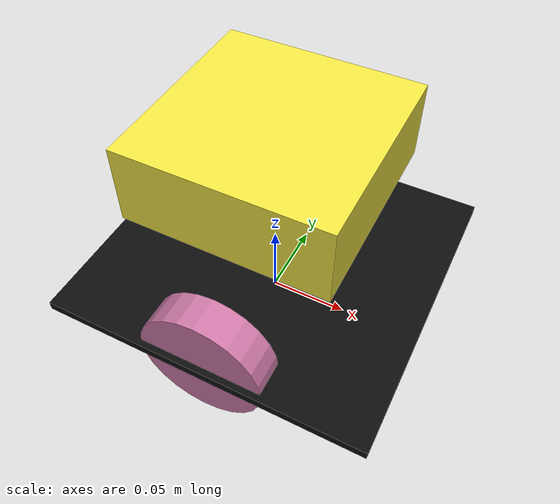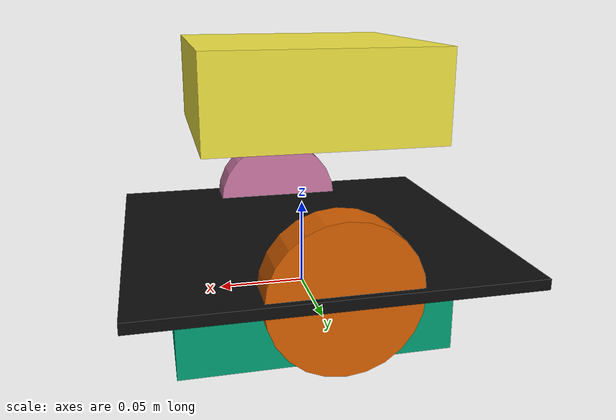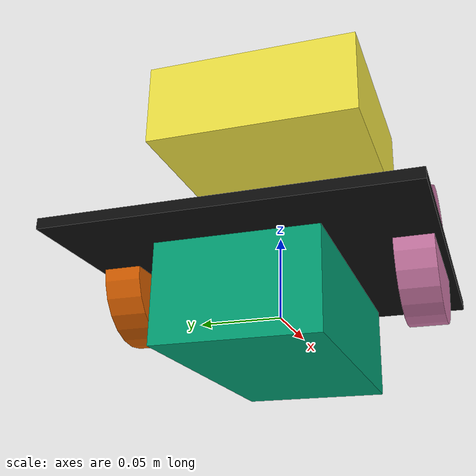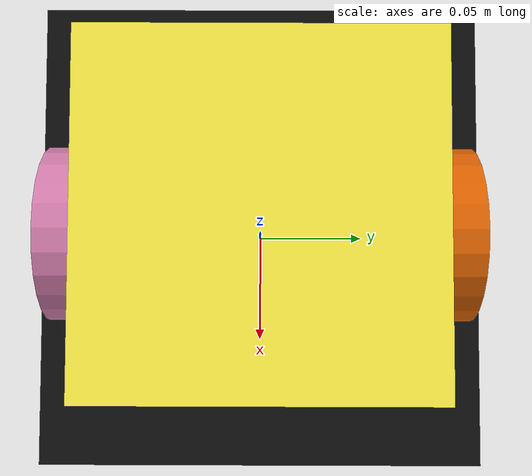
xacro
<?xml version="1.0"?>
<robot xmlns:xacro="http://www.ros.org/wiki/xacro" name="karakuri">
  <xacro:property name="deck_x" value="0.210"/>
  <xacro:property name="deck_y" value="0.200"/>
  <xacro:property name="deck_z" value="0.006"/>
  <xacro:property name="wheel_radius" value="0.040"/>
  <xacro:property name="wheel_width" value="0.022"/>

  <xacro:macro name="box_inertial" params="mass x y z">
    <inertial>
      <mass value="${mass}"/>
      <origin xyz="0 0 0" rpy="0 0 0"/>
      <inertia
        ixx="${mass * (y * y + z * z) / 12.0}"
        ixy="0"
        ixz="0"
        iyy="${mass * (x * x + z * z) / 12.0}"
        iyz="0"
        izz="${mass * (x * x + y * y) / 12.0}"/>
    </inertial>
  </xacro:macro>

  <link name="base_link"/>

  <link name="chassis_deck">
    <visual>
      <geometry><box size="${deck_x} ${deck_y} ${deck_z}"/></geometry>
      <material name="karakuri_black"><color rgba="0.05 0.05 0.05 1.0"/></material>
    </visual>
    <collision><geometry><box size="${deck_x} ${deck_y} ${deck_z}"/></geometry></collision>
    <xacro:box_inertial mass="1.2" x="${deck_x}" y="${deck_y}" z="${deck_z}"/>
  </link>

  <joint name="base_to_chassis" type="fixed">
    <parent link="base_link"/>
    <child link="chassis_deck"/>
    <origin xyz="0 0 0.030" rpy="0 0 0"/>
  </joint>

  <link name="battery_pack">
    <visual><geometry><box size="0.160 0.090 0.055"/></geometry></visual>
    <collision><geometry><box size="0.160 0.090 0.055"/></geometry></collision>
    <xacro:box_inertial mass="4.8" x="0.160" y="0.090" z="0.055"/>
  </link>

  <joint name="battery_mount" type="fixed">
    <parent link="chassis_deck"/>
    <child link="battery_pack"/>
    <origin xyz="0 0 -0.035" rpy="0 0 0"/>
  </joint>

  <link name="compute_module">
    <visual><geometry><box size="0.127 0.127 0.050"/></geometry></visual>
    <collision><geometry><box size="0.127 0.127 0.050"/></geometry></collision>
    <xacro:box_inertial mass="0.75" x="0.127" y="0.127" z="0.050"/>
  </link>

  <joint name="compute_mount" type="fixed">
    <parent link="chassis_deck"/>
    <child link="compute_module"/>
    <origin xyz="0 0 0.090" rpy="0 0 0"/>
  </joint>

  <link name="kinect_depth_camera"/>
  <joint name="camera_mount" type="fixed">
    <parent link="chassis_deck"/>
    <child link="kinect_depth_camera"/>
    <origin xyz="0.000 0.075 0.460" rpy="0.349 0 0"/>
  </joint>

  <xacro:macro name="wheel" params="side y">
    <link name="${side}_wheel">
      <visual>
        <origin xyz="0 0 0" rpy="1.5708 0 0"/>
        <geometry><cylinder radius="${wheel_radius}" length="${wheel_width}"/></geometry>
      </visual>
      <collision>
        <origin xyz="0 0 0" rpy="1.5708 0 0"/>
        <geometry><cylinder radius="${wheel_radius}" length="${wheel_width}"/></geometry>
      </collision>
      <inertial>
        <mass value="0.18"/>
        <origin xyz="0 0 0" rpy="0 0 0"/>
        <inertia ixx="0.00008" ixy="0" ixz="0" iyy="0.00008" iyz="0" izz="0.00008"/>
      </inertial>
    </link>
    <joint name="${side}_wheel_joint" type="continuous">
      <parent link="chassis_deck"/>
      <child link="${side}_wheel"/>
      <origin xyz="0 ${y} 0.000" rpy="0 0 0"/>
      <axis xyz="0 1 0"/>
    </joint>
  </xacro:macro>

  <xacro:wheel side="left" y="0.085"/>
  <xacro:wheel side="right" y="-0.085"/>

  <xacro:macro name="leg" params="name x y">
    <link name="${name}_leg_coxa"/>
    <link name="${name}_leg_femur"/>
    <link name="${name}_leg_tibia"/>
    <link name="${name}_biaxial_joint"/>
    <link name="${name}_foot_wheel_module"/>
    <joint name="${name}_hip_yaw" type="revolute">
      <parent link="chassis_deck"/>
      <child link="${name}_leg_coxa"/>
      <origin xyz="${x} ${y} 0.015" rpy="0 0 0"/>
      <axis xyz="0 0 1"/>
      <limit lower="-0.785398" upper="0.785398" effort="8" velocity="0.5"/>
    </joint>
    <joint name="${name}_hip_pitch" type="revolute">
      <parent link="${name}_leg_coxa"/>
      <child link="${name}_leg_femur"/>
      <origin xyz="0.045 0 0" rpy="0 0 0"/>
      <axis xyz="0 1 0"/>
      <limit lower="-0.785398" upper="1.047198" effort="12" velocity="0.5"/>
    </joint>
    <joint name="${name}_knee_pitch" type="revolute">
      <parent link="${name}_leg_femur"/>
      <child link="${name}_leg_tibia"/>
      <origin xyz="0.070 0 0" rpy="0 0 0"/>
      <axis xyz="0 1 0"/>
      <limit lower="-1.570796" upper="0.523599" effort="12" velocity="0.5"/>
    </joint>
    <joint name="${name}_ankle_biaxial" type="revolute">
      <parent link="${name}_leg_tibia"/>
      <child link="${name}_biaxial_joint"/>
      <origin xyz="0.090 0 0" rpy="0 0 0"/>
      <axis xyz="1 0 0"/>
      <limit lower="-0.785398" upper="0.785398" effort="10" velocity="0.5"/>
    </joint>
    <joint name="${name}_wheel_deploy" type="revolute">
      <parent link="${name}_biaxial_joint"/>
      <child link="${name}_foot_wheel_module"/>
      <origin xyz="0.030 0 -0.045" rpy="0 0 0"/>
      <axis xyz="0 1 0"/>
      <limit lower="0" upper="0.785398" effort="10" velocity="0.5"/>
    </joint>
  </xacro:macro>

  <xacro:leg name="front_left" x="0.080" y="0.075"/>
  <xacro:leg name="front_right" x="0.080" y="-0.075"/>
  <xacro:leg name="rear_left" x="-0.080" y="0.075"/>
  <xacro:leg name="rear_right" x="-0.080" y="-0.075"/>

  <link name="vacuum_nozzle"/>
  <joint name="vacuum_mount" type="fixed">
    <parent link="chassis_deck"/>
    <child link="vacuum_nozzle"/>
    <origin xyz="0.105 0 -0.020" rpy="0 0 0"/>
  </joint>

  <link name="mop_module"/>
  <joint name="mop_mount" type="fixed">
    <parent link="chassis_deck"/>
    <child link="mop_module"/>
    <origin xyz="-0.080 0 -0.020" rpy="0 0 0"/>
  </joint>

  <link name="cliff_front_left"/>
  <link name="cliff_front_right"/>
  <link name="cliff_rear_left"/>
  <link name="cliff_rear_right"/>
  <joint name="cliff_front_left_mount" type="fixed">
    <parent link="chassis_deck"/>
    <child link="cliff_front_left"/>
    <origin xyz="0.105 0.085 -0.010" rpy="0 0 0"/>
  </joint>
  <joint name="cliff_front_right_mount" type="fixed">
    <parent link="chassis_deck"/>
    <child link="cliff_front_right"/>
    <origin xyz="0.105 -0.085 -0.010" rpy="0 0 0"/>
  </joint>
  <joint name="cliff_rear_left_mount" type="fixed">
    <parent link="chassis_deck"/>
    <child link="cliff_rear_left"/>
    <origin xyz="-0.105 0.085 -0.010" rpy="0 0 0"/>
  </joint>
  <joint name="cliff_rear_right_mount" type="fixed">
    <parent link="chassis_deck"/>
    <child link="cliff_rear_right"/>
    <origin xyz="-0.105 -0.085 -0.010" rpy="0 0 0"/>
  </joint>
</robot>
